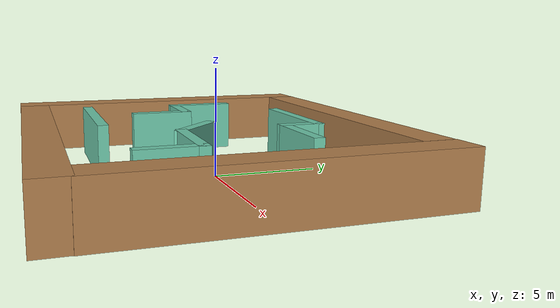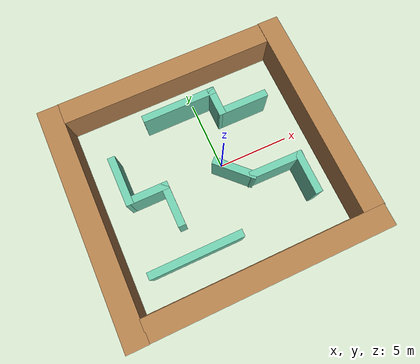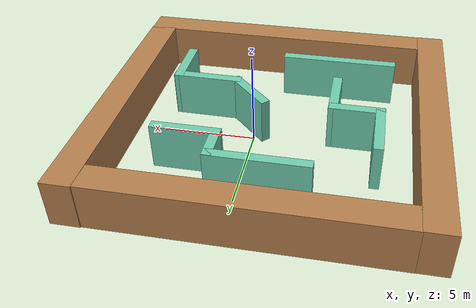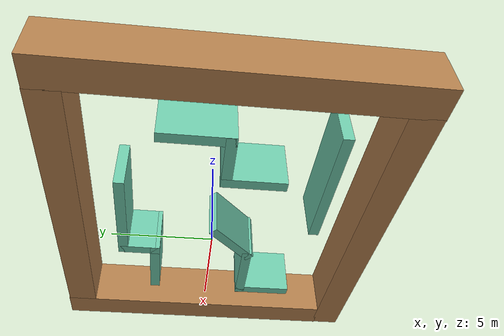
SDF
<?xml version='1.0'?>
<sdf version='1.7'>
  <model name='building_model'>
    <pose>-1.04256 -0.321308 0 0 -0 0</pose>
    <link name='Wall_29'>
      <collision name='Wall_29_Collision'>
        <geometry>
          <box>
            <size>15 1.5 2.5</size>
          </box>
        </geometry>
        <pose>0 0 1.25 0 -0 0</pose>
      </collision>
      <visual name='Wall_29_Visual'>
        <pose>0 0 1.25 0 -0 0</pose>
        <geometry>
          <box>
            <size>15 1.5 2.5</size>
          </box>
        </geometry>
        <material>
          <script>
            <uri>file://media/materials/scripts/gazebo.material</uri>
            <name>Gazebo/Wood</name>
          </script>
          <ambient>1 1 1 1</ambient>
        </material>
        <meta>
          <layer>0</layer>
        </meta>
      </visual>
      <pose>-0.020938 7.41355 0 0 -0 0</pose>
    </link>
    <link name='Wall_31'>
      <collision name='Wall_31_Collision'>
        <geometry>
          <box>
            <size>16.35 1.5 2.5</size>
          </box>
        </geometry>
        <pose>0 0 1.25 0 -0 0</pose>
      </collision>
      <visual name='Wall_31_Visual'>
        <pose>0 0 1.25 0 -0 0</pose>
        <geometry>
          <box>
            <size>16.35 1.5 2.5</size>
          </box>
        </geometry>
        <material>
          <script>
            <uri>file://media/materials/scripts/gazebo.material</uri>
            <name>Gazebo/Wood</name>
          </script>
          <ambient>1 1 1 1</ambient>
        </material>
        <meta>
          <layer>0</layer>
        </meta>
      </visual>
      <pose>-8.23951 -0.024956 0 0 -0 -1.5708</pose>
    </link>
    <link name='Wall_33'>
      <collision name='Wall_33_Collision'>
        <geometry>
          <box>
            <size>16.5 1.5 2.5</size>
          </box>
        </geometry>
        <pose>0 0 1.25 0 -0 0</pose>
      </collision>
      <visual name='Wall_33_Visual'>
        <pose>0 0 1.25 0 -0 0</pose>
        <geometry>
          <box>
            <size>16.5 1.5 2.5</size>
          </box>
        </geometry>
        <material>
          <script>
            <uri>file://media/materials/scripts/gazebo.material</uri>
            <name>Gazebo/Wood</name>
          </script>
          <ambient>1 1 1 1</ambient>
        </material>
        <meta>
          <layer>0</layer>
        </meta>
      </visual>
      <pose>0.702362 -7.43234 0 0 -0 0</pose>
    </link>
    <link name='Wall_35'>
      <collision name='Wall_35_Collision'>
        <geometry>
          <box>
            <size>15 1.5 2.5</size>
          </box>
        </geometry>
        <pose>0 0 1.25 0 -0 0</pose>
      </collision>
      <visual name='Wall_35_Visual'>
        <pose>0 0 1.25 0 -0 0</pose>
        <geometry>
          <box>
            <size>15 1.5 2.5</size>
          </box>
        </geometry>
        <material>
          <script>
            <uri>file://media/materials/scripts/gazebo.material</uri>
            <name>Gazebo/Wood</name>
          </script>
          <ambient>1 1 1 1</ambient>
        </material>
        <meta>
          <layer>0</layer>
        </meta>
      </visual>
      <pose>8.23951 0.699956 0 0 -0 -1.5708</pose>
    </link>
    <link name='Wall_37'>
      <collision name='Wall_37_Collision'>
        <geometry>
          <box>
            <size>3.4119 0.5 2.5</size>
          </box>
        </geometry>
        <pose>0 0 1.25 0 -0 0</pose>
      </collision>
      <visual name='Wall_37_Visual'>
        <pose>0 0 1.25 0 -0 0</pose>
        <geometry>
          <box>
            <size>3.4119 0.5 2.5</size>
          </box>
        </geometry>
        <material>
          <script>
            <uri>file://media/materials/scripts/gazebo.material</uri>
            <name>Gazebo/Grey</name>
          </script>
          <ambient>0.435294 0.796078 0.67451 1</ambient>
        </material>
        <meta>
          <layer>0</layer>
        </meta>
      </visual>
      <pose>-5.57013 1.51448 0 0 -0 -1.5708</pose>
    </link>
    <link name='Wall_38'>
      <collision name='Wall_38_Collision'>
        <geometry>
          <box>
            <size>2.89209 0.5 2.5</size>
          </box>
        </geometry>
        <pose>0 0 1.25 0 -0 0</pose>
      </collision>
      <visual name='Wall_38_Visual'>
        <pose>0 0 1.25 0 -0 0</pose>
        <geometry>
          <box>
            <size>2.89209 0.5 2.5</size>
          </box>
        </geometry>
        <material>
          <script>
            <uri>file://media/materials/scripts/gazebo.material</uri>
            <name>Gazebo/Grey</name>
          </script>
          <ambient>0.435294 0.796078 0.67451 1</ambient>
        </material>
        <meta>
          <layer>0</layer>
        </meta>
      </visual>
      <pose>-4.35404 0.052681 0 0 -0 -0.004889</pose>
    </link>
    <link name='Wall_39'>
      <collision name='Wall_39_Collision'>
        <geometry>
          <box>
            <size>3.0381 0.5 2.5</size>
          </box>
        </geometry>
        <pose>0 0 1.25 0 -0 0</pose>
      </collision>
      <visual name='Wall_39_Visual'>
        <pose>0 0 1.25 0 -0 0</pose>
        <geometry>
          <box>
            <size>3.0381 0.5 2.5</size>
          </box>
        </geometry>
        <material>
          <script>
            <uri>file://media/materials/scripts/gazebo.material</uri>
            <name>Gazebo/Grey</name>
          </script>
          <ambient>0.435294 0.796078 0.67451 1</ambient>
        </material>
        <meta>
          <layer>0</layer>
        </meta>
      </visual>
      <pose>-3.1275 -1.22222 0 0 -0 -1.5708</pose>
    </link>
    <link name='Wall_42'>
      <collision name='Wall_42_Collision'>
        <geometry>
          <box>
            <size>6.35 0.5 2.5</size>
          </box>
        </geometry>
        <pose>0 0 1.25 0 -0 0</pose>
      </collision>
      <visual name='Wall_42_Visual'>
        <pose>0 0 1.25 0 -0 0</pose>
        <geometry>
          <box>
            <size>6.35 0.5 2.5</size>
          </box>
        </geometry>
        <material>
          <script>
            <uri>file://media/materials/scripts/gazebo.material</uri>
            <name>Gazebo/Grey</name>
          </script>
          <ambient>0.435294 0.796078 0.67451 1</ambient>
        </material>
        <meta>
          <layer>0</layer>
        </meta>
      </visual>
      <pose>-3.02591 -4.67943 0 0 -0 0</pose>
    </link>
    <link name='Wall_44'>
      <collision name='Wall_44_Collision'>
        <geometry>
          <box>
            <size>5.25 0.5 2.5</size>
          </box>
        </geometry>
        <pose>0 0 1.25 0 -0 0</pose>
      </collision>
      <visual name='Wall_44_Visual'>
        <pose>0 0 1.25 0 -0 0</pose>
        <geometry>
          <box>
            <size>5.25 0.5 2.5</size>
          </box>
        </geometry>
        <material>
          <script>
            <uri>file://media/materials/scripts/gazebo.material</uri>
            <name>Gazebo/Grey</name>
          </script>
          <ambient>0.435294 0.796078 0.67451 1</ambient>
        </material>
        <meta>
          <layer>0</layer>
        </meta>
      </visual>
      <pose>-0.08344 4.82076 0 0 -0 0</pose>
    </link>
    <link name='Wall_45'>
      <collision name='Wall_45_Collision'>
        <geometry>
          <box>
            <size>2.09197 0.5 2.5</size>
          </box>
        </geometry>
        <pose>0 0 1.25 0 -0 0</pose>
      </collision>
      <visual name='Wall_45_Visual'>
        <pose>0 0 1.25 0 -0 0</pose>
        <geometry>
          <box>
            <size>2.09197 0.5 2.5</size>
          </box>
        </geometry>
        <material>
          <script>
            <uri>file://media/materials/scripts/gazebo.material</uri>
            <name>Gazebo/Grey</name>
          </script>
          <ambient>0.435294 0.796078 0.67451 1</ambient>
        </material>
        <meta>
          <layer>0</layer>
        </meta>
      </visual>
      <pose>2.29606 3.99428 0 0 -0 -1.56514</pose>
    </link>
    <link name='Wall_46'>
      <collision name='Wall_46_Collision'>
        <geometry>
          <box>
            <size>3.59957 0.5 2.5</size>
          </box>
        </geometry>
        <pose>0 0 1.25 0 -0 0</pose>
      </collision>
      <visual name='Wall_46_Visual'>
        <pose>0 0 1.25 0 -0 0</pose>
        <geometry>
          <box>
            <size>3.59957 0.5 2.5</size>
          </box>
        </geometry>
        <material>
          <script>
            <uri>file://media/materials/scripts/gazebo.material</uri>
            <name>Gazebo/Grey</name>
          </script>
          <ambient>0.435294 0.796078 0.67451 1</ambient>
        </material>
        <meta>
          <layer>0</layer>
        </meta>
      </visual>
      <pose>3.85056 3.19131 0 0 -0 -0.004516</pose>
    </link>
    <link name='Wall_48'>
      <collision name='Wall_48_Collision'>
        <geometry>
          <box>
            <size>3 0.5 2.5</size>
          </box>
        </geometry>
        <pose>0 0 1.25 0 -0 0</pose>
      </collision>
      <visual name='Wall_48_Visual'>
        <pose>0 0 1.25 0 -0 0</pose>
        <geometry>
          <box>
            <size>3 0.5 2.5</size>
          </box>
        </geometry>
        <material>
          <script>
            <uri>file://media/materials/scripts/gazebo.material</uri>
            <name>Gazebo/Grey</name>
          </script>
          <ambient>0.435294 0.796078 0.67451 1</ambient>
        </material>
        <meta>
          <layer>0</layer>
        </meta>
      </visual>
      <pose>1.43131 -0.722985 0 0 -0 -0.785398</pose>
    </link>
    <link name='Wall_49'>
      <collision name='Wall_49_Collision'>
        <geometry>
          <box>
            <size>3.77854 0.5 2.5</size>
          </box>
        </geometry>
        <pose>0 0 1.25 0 -0 0</pose>
      </collision>
      <visual name='Wall_49_Visual'>
        <pose>0 0 1.25 0 -0 0</pose>
        <geometry>
          <box>
            <size>3.77854 0.5 2.5</size>
          </box>
        </geometry>
        <material>
          <script>
            <uri>file://media/materials/scripts/gazebo.material</uri>
            <name>Gazebo/Grey</name>
          </script>
          <ambient>0.435294 0.796078 0.67451 1</ambient>
        </material>
        <meta>
          <layer>0</layer>
        </meta>
      </visual>
      <pose>3.98942 -1.62761 0 0 -0 -0.012651</pose>
    </link>
    <link name='Wall_50'>
      <collision name='Wall_50_Collision'>
        <geometry>
          <box>
            <size>3 0.5 2.5</size>
          </box>
        </geometry>
        <pose>0 0 1.25 0 -0 0</pose>
      </collision>
      <visual name='Wall_50_Visual'>
        <pose>0 0 1.25 0 -0 0</pose>
        <geometry>
          <box>
            <size>3 0.5 2.5</size>
          </box>
        </geometry>
        <material>
          <script>
            <uri>file://media/materials/scripts/gazebo.material</uri>
            <name>Gazebo/Grey</name>
          </script>
          <ambient>0.435294 0.796078 0.67451 1</ambient>
        </material>
        <meta>
          <layer>0</layer>
        </meta>
      </visual>
      <pose>5.60861 -2.89834 0 0 -0 -1.5708</pose>
    </link>
    <static>1</static>
  </model>
</sdf>
